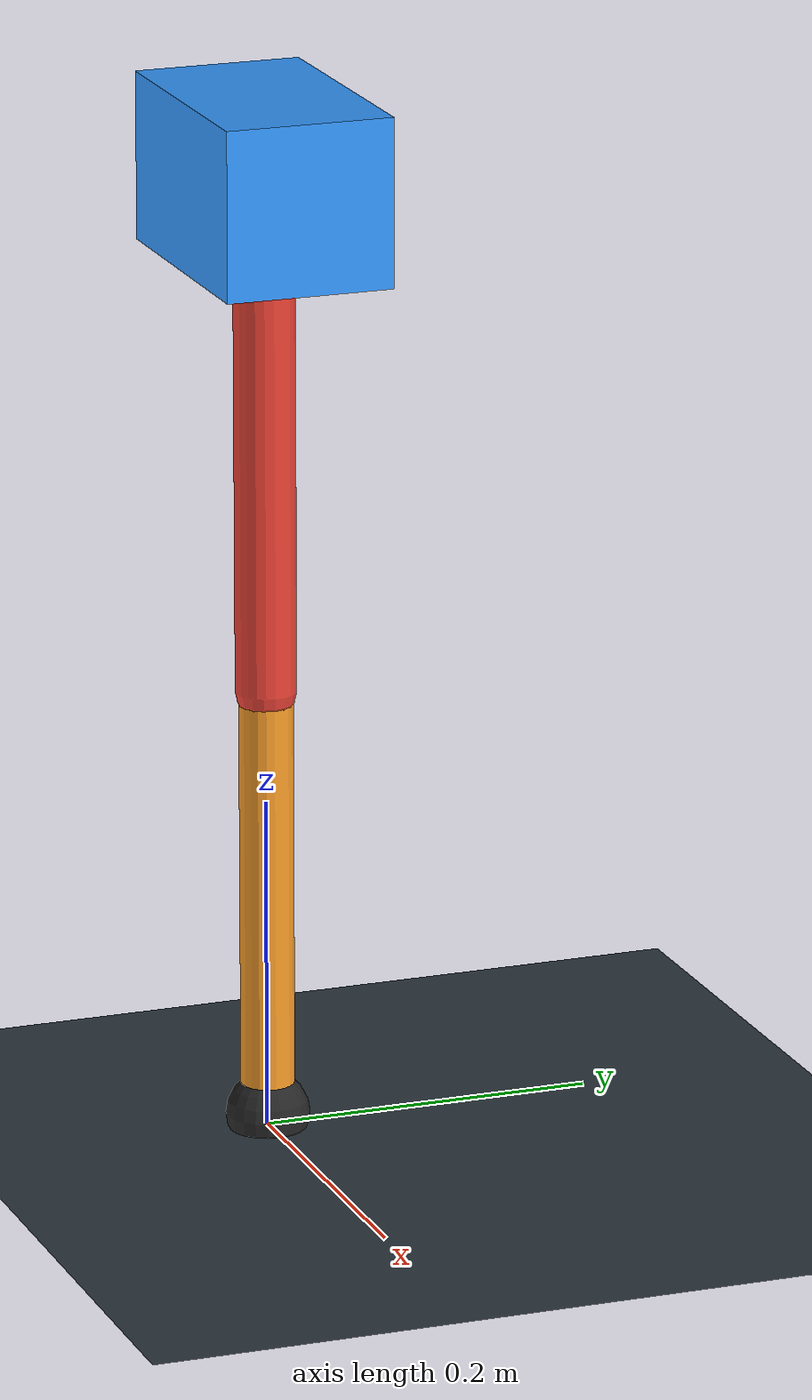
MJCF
<mujoco model="single_axis_two_bar">
  <compiler angle="radian" inertiafromgeom="true"/>
  <option timestep="0.001" integrator="implicitfast" gravity="0 0 -9.81"/>
  <default>
    <joint damping="0.08"/>
    <geom friction="1.2 0.01 0.0001" condim="3"/>
  </default>
  <worldbody>
    <geom name="floor" type="plane" size="5 5 0.1" rgba="0.18 0.22 0.25 1"/>
    <body name="carriage" pos="0 0 0.5755841513101948">
      <joint name="pole_slide" type="slide" axis="0 0 1"/>
      <geom name="payload" type="box" size="0.08 0.05 0.05" mass="3.328813205310854" rgba="0.2 0.6 1 1"/>
      <body name="thigh" pos="0 0 0">
        <joint name="hip" type="hinge" axis="0 1 0"/>
        <geom name="thigh_link" type="capsule" fromto="0 0 0 0 0 -0.3070929162569528" size="0.018" mass="0.21880776070794755" rgba="0.9 0.25 0.2 1"/>
        <body name="shank" pos="0 0 -0.3070929162569528">
          <joint name="knee" type="hinge" axis="0 1 0"/>
          <geom name="shank_link" type="capsule" fromto="0 0 0 0 0 -0.2605196108669594" size="0.016" mass="0.1856236652056433" rgba="0.95 0.6 0.15 1"/>
          <geom name="foot" type="sphere" pos="0 0 -0.2605196108669594" size="0.025" mass="0.03" rgba="0.15 0.15 0.15 1"/>
          <site name="toe" pos="0 0 -0.2605196108669594" size="0.008"/>
        </body>
      </body>
    </body>
  </worldbody>
  <actuator>
    <motor name="hip_motor" joint="hip" ctrlrange="-29.911684281731553 29.911684281731553"/>
    <motor name="knee_motor" joint="knee" ctrlrange="-74.32260031171857 74.32260031171857"/>
  </actuator>
</mujoco>
